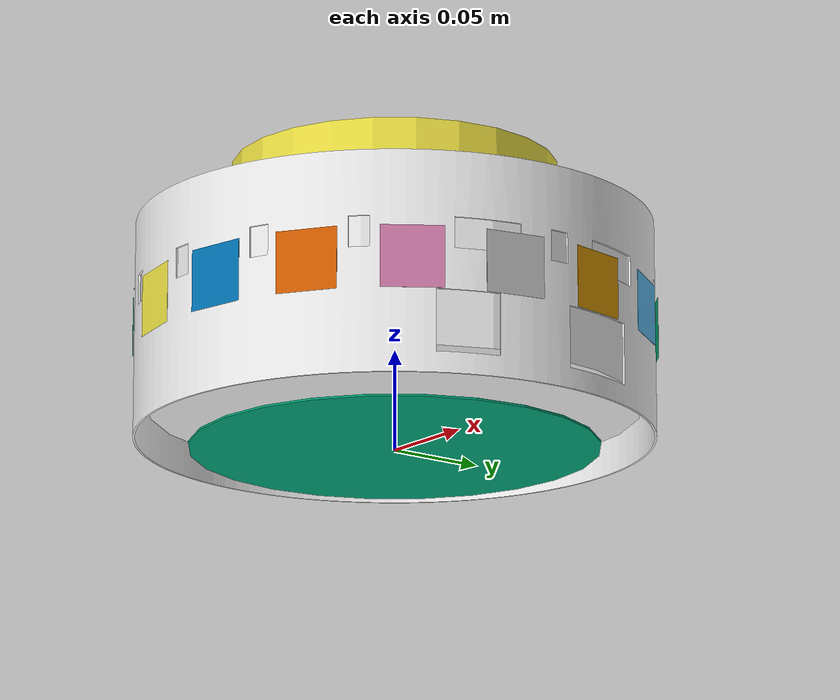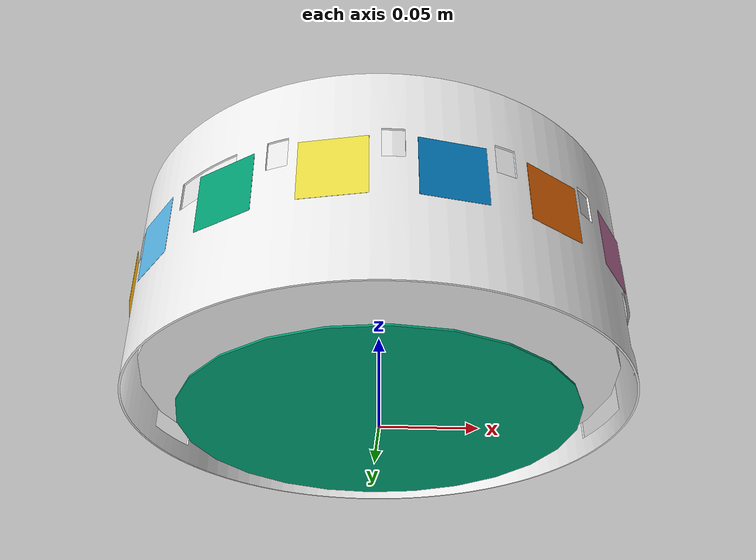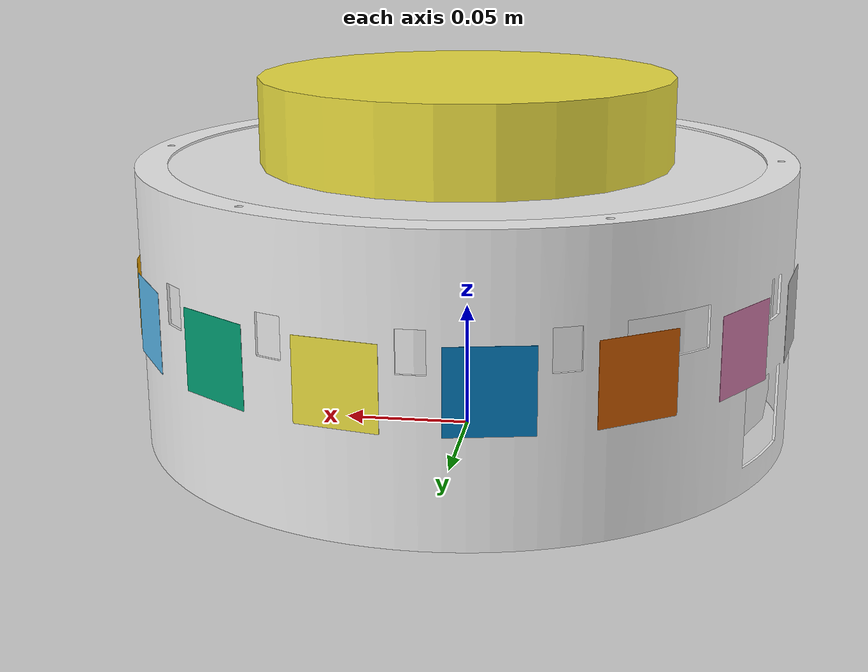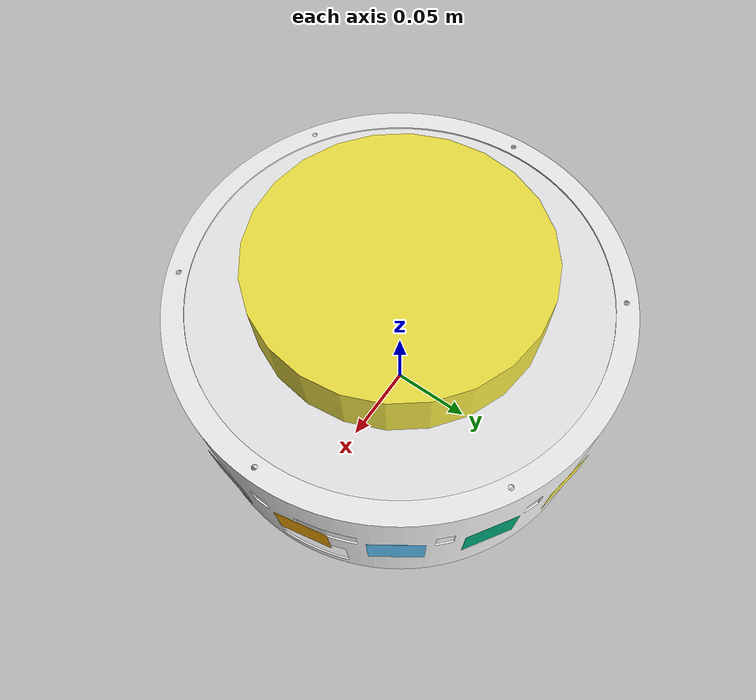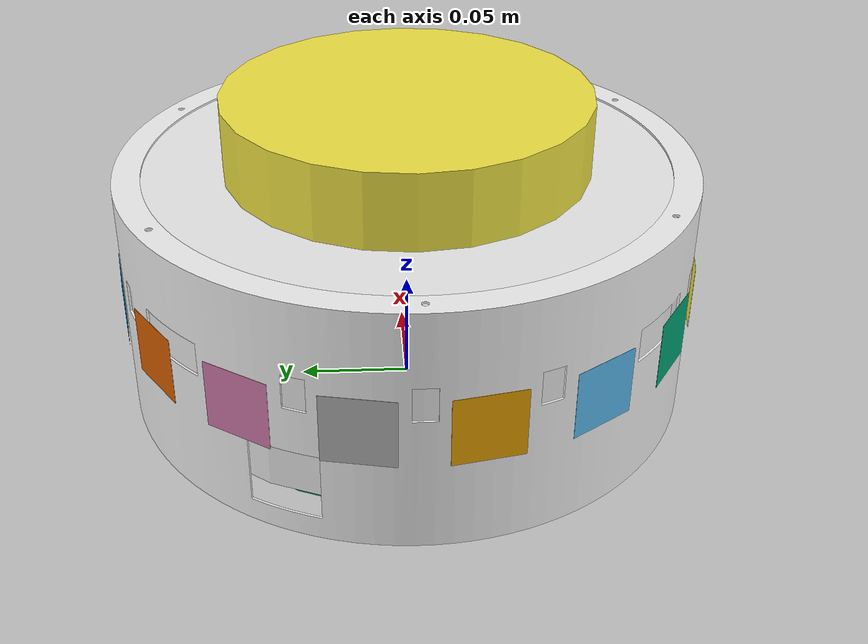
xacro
<?xml version="1.0"?>

<robot name="dots" xmlns:xacro="http://www.ros.org/wiki/xacro">

  <!-- Robot parameters -->

  <xacro:property name="lasersamples" value="16" />
  <xacro:property name="laser_min" value="0.13" />
  <xacro:property name="laser_max" value="2.0" />

  <xacro:property name="scale" value="0.001" />

  <xacro:property name="board_height" value="0.06" />
  <xacro:property name="ray_height" value="${board_height - 0.02}" />

  <xacro:property name="camera_dist" value="0.11" />
  <xacro:property name="camera_height" value="0.075" />
  <xacro:property name="cam0_angle" value="0.2967" />
  <xacro:property name="cam1_angle" value="2.251" />
  <xacro:property name="cam2_angle" value="-2.251" />
  <xacro:property name="cam3_angle" value="-0.2967" />

  <xacro:property name="led_radius" value="0.127" />
  <xacro:property name="led_width"  value="0.03" />
  <xacro:property name="led_height" value="0.03" />
  <xacro:property name="led_vpos"   value="0.06" />

  <xacro:property name="led0_angle" value="0.1963" />
  <xacro:property name="led1_angle" value="0.5890" />
  <xacro:property name="led2_angle" value="0.9817" />
  <xacro:property name="led3_angle" value="1.3744" />
  <xacro:property name="led4_angle" value="1.7671" />
  <xacro:property name="led5_angle" value="2.1598" />
  <xacro:property name="led6_angle" value="2.5525" />
  <xacro:property name="led7_angle" value="2.9452" />
  <xacro:property name="led8_angle" value="3.3338" />
  <xacro:property name="led9_angle" value="3.7306" />
  <xacro:property name="led10_angle" value="4.1233" />
  <xacro:property name="led11_angle" value="4.5160" />
  <xacro:property name="led12_angle" value="4.9087" />
  <xacro:property name="led13_angle" value="5.3014" />
  <xacro:property name="led14_angle" value="5.6941" />
  <xacro:property name="led15_angle" value="6.0868" />

  <!-- Body links -->
  <link name="base_link" />

  <link name="body">
    <inertial>
        <mass value="2.0" />
        <!-- These numbers are roughly right for a solid cylinder 100mm high, 125mm radius -->
        <inertia ixx="0.01" ixy="0.0" ixz="0.0" iyy="0.01" iyz="0.0" izz="0.015"/>
    </inertial>
    <collision>
      <origin xyz="0 0 0.06" rpy="0 0 0" />
      <geometry>
        <cylinder length="0.12" radius="0.125"/>
      </geometry>
      <surface>
        <friction>
          <ode>
            <mu>0.1</mu>
            <mu2>0.1</mu2>
          </ode>
        </friction>
      </surface>
    </collision>
    <visual>
      <origin xyz="0 0 0" rpy="0 0 0" />
      <geometry>
        <mesh filename="package://dots_sim/models/robot/shell.stl" scale="${scale} ${scale} ${scale}"/>
      </geometry>
      <material name="White">
        <color rgba="${240/255} ${240/255} ${240/255} 1.0"/>
      </material>
    </visual>
    <visual>
      <origin xyz="0 0 0.06" rpy="0 0 0" />
      <geometry>
        <cylinder length="0.09" radius="0.12"/>
      </geometry>
    </visual>
  </link>
  <joint name="body_joint" type="fixed">
    <parent link="base_link"/>
    <child link="body"/>
    <axis xyz="0 0 1"/>
    <origin xyz="0 0 0.005" rpy="0 0 0"/>
  </joint>

  <link name="slider">
    <inertial>
        <mass value="1.0" />
        <!-- These numbers are roughly right for a solid cylinder 100mm high, 125mm radius -->
        <inertia ixx="0.01" ixy="0.0" ixz="0.0" iyy="0.01" iyz="0.0" izz="0.015"/>
    </inertial>
    <collision>
      <origin xyz="0 0 0" rpy="0 0 0" />
      <geometry>
        <cylinder length="0.001" radius="0.125"/>
      </geometry>
      <surface>
        <friction>
          <ode>
            <mu>0.2</mu>
            <mu2>0.2</mu2>
          </ode>
        </friction>
      </surface>
    </collision>
    <visual>
      <origin xyz="0 0 0.001" rpy="0 0 0" />
      <geometry>
        <cylinder length="0.001" radius="0.1"/>
      </geometry>
    </visual>
  </link>
  <joint name="slider_joint" type="fixed">
    <parent link="base_link"/>
    <child link="slider"/>
    <axis xyz="0 0 1"/>
    <origin xyz="0 0 0" rpy="0 0 0"/>
  </joint>

  <link name="lifter">
    <inertial>
        <mass value="0.2" />
        <!-- These numbers are roughly right for a solid cylinder 100mm high, 125mm radius -->
        <inertia ixx="0.01" ixy="0.0" ixz="0.0" iyy="0.01" iyz="0.0" izz="0.015"/>
    </inertial>
    <collision>
      <origin xyz="0 0 0" rpy="0 0 0" />
      <geometry>
        <cylinder length="0.002" radius="0.08"/>
      </geometry>
      <surface>
        <friction>
          <ode>
            <mu>Inf</mu>
            <mu2>Inf</mu2>
          </ode>
        </friction>
        <contact>
          <ode>
          </ode>
        </contact>
      </surface>
    </collision>
    <collision>
      <origin xyz="0.08 0 0" rpy="0 0 0" />
      <geometry>
        <sphere radius="0.005"/>
      </geometry>
      <surface>
        <friction>
          <ode>
            <mu>Inf</mu>
            <mu2>Inf</mu2>
          </ode>
        </friction>
        <contact>
          <ode>
          </ode>
        </contact>
      </surface>
    </collision>
    <collision>
      <origin xyz="0.0 0.08 0" rpy="0 0 0" />
      <geometry>
        <sphere radius="0.005"/>
      </geometry>
      <surface>
        <friction>
          <ode>
            <mu>Inf</mu>
            <mu2>Inf</mu2>
          </ode>
        </friction>
        <contact>
          <ode>
          </ode>
        </contact>
      </surface>
    </collision>
    <collision>
      <origin xyz="-0.08 0.0 0" rpy="0 0 0" />
      <geometry>
        <sphere radius="0.005"/>
      </geometry>
      <surface>
        <friction>
          <ode>
            <mu>Inf</mu>
            <mu2>Inf</mu2>
          </ode>
        </friction>
        <contact>
          <ode>
          </ode>
        </contact>
      </surface>
    </collision>
    <collision>
      <origin xyz="0.0 -0.08 0" rpy="0 0 0" />
      <geometry>
        <sphere radius="0.005"/>
      </geometry>
      <surface>
        <friction>
          <ode>
            <mu>Inf</mu>
            <mu2>Inf</mu2>
          </ode>
        </friction>
        <contact>
          <ode>
          </ode>
        </contact>
      </surface>
    </collision>
    <visual>
      <origin xyz="0 0 -0.05" rpy="0 0 0" />
      <geometry>
        <cylinder length="0.10" radius="0.08"/>
      </geometry>
    </visual>
  </link>
  <joint name="lifter_joint" type="prismatic">
    <parent link="base_link"/>
    <child link="lifter"/>
    <axis xyz="0 0 1"/>
    <!-- height down 143mm up 197mm -->
    <origin xyz="0 0 0.143" rpy="0 0 0"/>
    <dynamics damping="1.0" friction="1.0"/>
    <limit lower="0.0" upper="0.054" effort="1000.0" velocity="5.0"/>
  </joint>

  <!-- Add sensor models -->
  <link name="irtof" />
  <joint name="irtof_joint" type="fixed">
    <parent link="base_link"/>
    <child link="irtof"/>
    <origin xyz="0 0 0.07" rpy="0 0 0"/>
  </joint>
  <gazebo reference="irtof">
    <sensor type="ray" name="ray_sensor">
      <pose>0 0 0 0 0 0</pose>
      <visualize>false</visualize>
      <update_rate>50</update_rate>
      <ray>
        <scan>
          <horizontal>
            <samples>${lasersamples}</samples>
            <resolution>1</resolution>
            <min_angle>0</min_angle>
            <max_angle>${2 * pi - pi / 8}</max_angle>
          </horizontal>
        </scan>
        <range>
          <min>${laser_min}</min>
          <max>${laser_max}</max>
          <resolution>0.001</resolution>
        </range>
      </ray>
      <noise>
        <type>gaussian</type>
        <mean>0.0</mean>
        <stddev>0.01</stddev>
      </noise>
      <plugin name="dots_sim_irtof" filename="libgazebo_ros_ray_sensor.so">
        <ros>
          <remapping>~/out:=sensor/scan</remapping>
        </ros>
        <frame_name>base_link</frame_name>
      </plugin>
    </sensor>
  </gazebo>

  <!-- Cameras -->
  <link name="cam0_link"/>
  <joint name="cam0_joint" type="fixed">
    <parent link="base_link"/>
    <child link="cam0_link"/>
    <origin xyz="${camera_dist*cos(cam0_angle)} ${camera_dist*sin(cam0_angle)} ${camera_height}" rpy="0 0 ${cam0_angle}"/>
  </joint>
  <link name="cam0_link_optical"/>
  <joint name="cam0_joint_optical" type="fixed">
    <origin xyz="0 0 0" rpy="${-pi/2} 0 ${-pi/2}"/>
    <parent link="cam0_link"/>
    <child link="cam0_link_optical"/>
  </joint>
  <gazebo reference="cam0_link">
    <sensor type="camera" name="cam0">
      <always_on>0</always_on>
      <update_rate>30</update_rate>
      <camera name="cam0">
        <horizontal_fov>2.094</horizontal_fov>
        <image>
          <width>640</width>
          <height>480</height>
          <format>R8G8B8</format>
        </image>
        <clip>
          <near>0.02</near>
          <far>300</far>
        </clip>
      </camera>
      <plugin name="cam0" filename="libgazebo_ros_camera.so">
        <ros>
          <remapping>cam0/image_raw:=cam0/image</remapping>
          <remapping>cam0/image_raw/compressed:=cam0/image/compressed</remapping>
        </ros>
        <frame_name>cam0_link_optical</frame_name>
      </plugin>
    </sensor>
  </gazebo>
  <link name="cam1_link"/>
  <joint name="cam1_joint" type="fixed">
    <parent link="base_link"/>
    <child link="cam1_link"/>
    <origin xyz="${camera_dist*cos(cam1_angle)} ${camera_dist*sin(cam1_angle)} ${camera_height}" rpy="0 0 ${cam1_angle}"/>
  </joint>
  <link name="cam1_link_optical"/>
  <joint name="cam1_joint_optical" type="fixed">
    <origin xyz="0 0 0" rpy="${-pi/2} 0 ${-pi/2}"/>
    <parent link="cam1_link"/>
    <child link="cam1_link_optical"/>
  </joint>
  <gazebo reference="cam1_link">
    <sensor type="camera" name="cam1">
      <always_on>0</always_on>
      <update_rate>30</update_rate>
      <camera name="cam1">
        <horizontal_fov>2.094</horizontal_fov>
        <image>
          <width>640</width>
          <height>480</height>
          <format>R8G8B8</format>
        </image>
        <clip>
          <near>0.02</near>
          <far>300</far>
        </clip>
      </camera>
      <plugin name="cam1" filename="libgazebo_ros_camera.so">
        <ros>
          <remapping>cam1/image_raw:=cam1/image</remapping>
          <remapping>cam1/image_raw/compressed:=cam1/image/compressed</remapping>
        </ros>
        <frame_name>cam1_link_optical</frame_name>
      </plugin>
    </sensor>
  </gazebo>
  <link name="cam2_link"/>
  <joint name="cam2_joint" type="fixed">
    <parent link="base_link"/>
    <child link="cam2_link"/>
    <origin xyz="${camera_dist*cos(cam2_angle)} ${camera_dist*sin(cam2_angle)} ${camera_height}" rpy="0 0 ${cam2_angle}"/>
  </joint>
  <link name="cam2_link_optical"/>
  <joint name="cam2_joint_optical" type="fixed">
    <origin xyz="0 0 0" rpy="${-pi/2} 0 ${-pi/2}"/>
    <parent link="cam2_link"/>
    <child link="cam2_link_optical"/>
  </joint>
  <gazebo reference="cam2_link">
    <sensor type="camera" name="cam2">
      <always_on>0</always_on>
      <update_rate>30</update_rate>
      <camera name="cam2">
        <horizontal_fov>2.094</horizontal_fov>
        <image>
          <width>640</width>
          <height>480</height>
          <format>R8G8B8</format>
        </image>
        <clip>
          <near>0.02</near>
          <far>300</far>
        </clip>
      </camera>
      <plugin name="cam2" filename="libgazebo_ros_camera.so">
        <ros>
          <remapping>cam2/image_raw:=cam2/image</remapping>
          <remapping>cam2/image_raw/compressed:=cam2/image/compressed</remapping>
        </ros>
        <frame_name>cam2_link_optical</frame_name>
      </plugin>
    </sensor>
  </gazebo>
  <link name="cam3_link"/>
  <joint name="cam3_joint" type="fixed">
    <parent link="base_link"/>
    <child link="cam3_link"/>
    <origin xyz="${camera_dist*cos(cam3_angle)} ${camera_dist*sin(cam3_angle)} ${camera_height}" rpy="0 0 ${cam3_angle}"/>
  </joint>
  <link name="cam3_link_optical"/>
  <joint name="cam3_joint_optical" type="fixed">
    <origin xyz="0 0 0" rpy="${-pi/2} 0 ${-pi/2}"/>
    <parent link="cam3_link"/>
    <child link="cam3_link_optical"/>
  </joint>
  <gazebo reference="cam3_link">
    <sensor type="camera" name="cam3">
      <always_on>0</always_on>
      <update_rate>30</update_rate>
      <camera name="cam3">
        <horizontal_fov>2.094</horizontal_fov>
        <image>
          <width>640</width>
          <height>480</height>
          <format>R8G8B8</format>
        </image>
        <clip>
          <near>0.02</near>
          <far>300</far>
        </clip>
      </camera>
      <plugin name="cam3" filename="libgazebo_ros_camera.so">
        <ros>
          <remapping>cam3/image_raw:=cam3/image</remapping>
          <remapping>cam3/image_raw/compressed:=cam3/image/compressed</remapping>
        </ros>
        <frame_name>cam3_link_optical</frame_name>
      </plugin>
    </sensor>
  </gazebo>

  <link name="cam4_link"/>
  <joint name="cam4_joint" type="fixed">
    <parent link="lifter"/>
    <child link="cam4_link"/>
    <origin xyz="0 0 0" rpy="0 -1.570796 0"/>
  </joint>
  <link name="cam4_link_optical"/>
  <joint name="cam4_joint_optical" type="fixed">
    <origin xyz="0 0 0" rpy="${-pi/2} 0 ${-pi/2}"/>
    <parent link="cam4_link"/>
    <child link="cam4_link_optical"/>
  </joint>
  <gazebo reference="cam4_link">
    <sensor type="camera" name="cam4">
      <always_on>0</always_on>
      <update_rate>30</update_rate>
      <camera name="cam4">
        <horizontal_fov>2.094</horizontal_fov>
        <image>
          <width>640</width>
          <height>480</height>
          <format>R8G8B8</format>
        </image>
        <clip>
          <near>0.02</near>
          <far>300</far>
        </clip>
      </camera>
      <plugin name="cam4" filename="libgazebo_ros_camera.so">
        <ros>
          <remapping>cam4/image_raw:=cam4/image</remapping>
          <remapping>cam4/image_raw/compressed:=cam4/image/compressed</remapping>
        </ros>
        <frame_name>cam4_link_optical</frame_name>
      </plugin>
    </sensor>
  </gazebo>

  <link name="imu_link"/>
  <joint name="imu_joint" type="fixed">
    <parent link="base_link"/>
    <child link="imu_link"/>
    <origin xyz="0 0 0" rpy="0 0 0"/>
  </joint>
  <gazebo reference="imu_link">
    <sensor name="imu" type="imu">
      <always_on>true</always_on>
      <update_rate>200</update_rate>
      <imu>
        <angular_velocity>
          <x><noise type="gaussian"><mean>0.0</mean><stddev>5e-3</stddev></noise></x>
          <y><noise type="gaussian"><mean>0.0</mean><stddev>5e-3</stddev></noise></y>
          <z><noise type="gaussian"><mean>0.0</mean><stddev>5e-3</stddev></noise></z>
        </angular_velocity>
        <linear_acceleration>
          <x><noise type="gaussian"><mean>0.0</mean><stddev>5e-2</stddev></noise></x>
          <y><noise type="gaussian"><mean>0.0</mean><stddev>5e-2</stddev></noise></y>
          <z><noise type="gaussian"><mean>0.0</mean><stddev>5e-2</stddev></noise></z>
        </linear_acceleration>
      </imu>
      <plugin name="imu_plugin" filename="libgazebo_ros_imu_sensor.so">
        <ros>
          <remapping>~/out:=sensor/imu</remapping>
        </ros>
      </plugin>
    </sensor>
  </gazebo>

  <gazebo reference="base_link">
    <material>Gazebo/DarkGrey</material>
  </gazebo>

  <gazebo reference="body">
    <material>Gazebo/White</material>
  </gazebo>

  <!--                GAZEBO RELATED PART                             -->

  <!-- ROS Control plugin for Gazebo -->
  <gazebo>
    <plugin name="dots_sim_force_based_drive" filename="libgazebo_ros_force_based_move.so">
      <ros>
        <remapping>/tf:=tf</remapping>
        <remapping>/tf_static:=tf_static</remapping>
      </ros>

      <!-- output -->
      <publish_odom>true</publish_odom>
      <publish_odom_tf>true</publish_odom_tf>

      <odometry_topic>odom</odometry_topic>
      <odometry_frame>odom</odometry_frame>
      <robot_base_frame>base_link</robot_base_frame>
      <vel_p_gain>500.0</vel_p_gain>
      <vel_i_gain>10000.0</vel_i_gain>
      <vel_i_lim>0.1</vel_i_lim>
      <force_lim>200.0</force_lim>
      <omega_p_gain>5.0</omega_p_gain>
      <omega_i_gain>100.0</omega_i_gain>
      <omega_i_lim>0.01</omega_i_lim>
      <torque_lim>10.0</torque_lim>
    </plugin>

    <!-- Ground truth -->
    <plugin name="gazebo_ros_p3d" filename="libgazebo_ros_p3d.so">
      <ros>
        <remapping>odom:=ground_truth</remapping>
      </ros>
      <body_name>base_link</body_name>
      <frame_name>odom</frame_name>
      <update_rate>50</update_rate>
      <xyz_offsets>0.0 0.0 0.0</xyz_offsets>
      <rpy_offsets>0.0 0.0 0.0</rpy_offsets>
      <gaussian_noise>0.01</gaussian_noise>
    </plugin>

    <plugin name="gazebo_ros_joint_state_publisher" filename="libgazebo_ros_joint_state_publisher.so">
      <ros>
        <remapping>/tf:=tf</remapping>
        <remapping>/tf_static:=tf_static</remapping>
      </ros>
      <joint_name>lifter_joint</joint_name>
      <update_rate>100.0</update_rate>
    </plugin>

    <plugin name="gazebo_ros_lifter" filename="libgazebo_ros_lifter.so">
      <topic>lifter_pos</topic>
      <joint_name>lifter_joint</joint_name>
      <joint_position>0.0</joint_position>
      <joint_pid>2000.0 1000.0 100.0</joint_pid>
      <integrator_limit>0.1</integrator_limit>
      <force_offset>2.0</force_offset>
      <update_rate>100.0</update_rate>
    </plugin>

  </gazebo>

<link name="led0">
<visual>
  <origin xyz="${led_radius*cos(led0_angle)} ${led_radius*sin(led0_angle)} ${led_vpos}" rpy="0 1.5708 ${led0_angle}" />
  <geometry>
    <box size="${led_width} ${led_height} 0.00011"/>
  </geometry>
</visual>
</link>
<joint name="led0_joint" type="fixed">
  <parent link="base_link"/><child link="led0"/>
  <axis xyz="0 0 0"/><origin xyz="0 0 0" rpy="0 0 0"/>
</joint>
<gazebo reference="led0">
  <material>transparent</material>
  <visual>
    <plugin name="colour_controller0" filename="libgazebo_ros_colour.so">
    <ros><remapping>colour:=led0</remapping></ros>
    </plugin>
  </visual>
</gazebo>
<link name="led1">
<visual>
  <origin xyz="${led_radius*cos(led1_angle)} ${led_radius*sin(led1_angle)} ${led_vpos}" rpy="0 1.5708 ${led1_angle}" />
  <geometry>
    <box size="${led_width} ${led_height} 0.00011"/>
  </geometry>
</visual>
</link>
<joint name="led1_joint" type="fixed">
  <parent link="base_link"/><child link="led1"/>
  <axis xyz="0 0 0"/><origin xyz="0 0 0" rpy="0 0 0"/>
</joint>
<gazebo reference="led1">
  <material>transparent</material>
  <visual>
    <plugin name="colour_controller1" filename="libgazebo_ros_colour.so">
    <ros><remapping>colour:=led1</remapping></ros>
    </plugin>
  </visual>
</gazebo>
<link name="led2">
<visual>
  <origin xyz="${led_radius*cos(led2_angle)} ${led_radius*sin(led2_angle)} ${led_vpos}" rpy="0 1.5708 ${led2_angle}" />
  <geometry>
    <box size="${led_width} ${led_height} 0.00011"/>
  </geometry>
</visual>
</link>
<joint name="led2_joint" type="fixed">
  <parent link="base_link"/><child link="led2"/>
  <axis xyz="0 0 0"/><origin xyz="0 0 0" rpy="0 0 0"/>
</joint>
<gazebo reference="led2">
  <material>transparent</material>
  <visual>
    <plugin name="colour_controller2" filename="libgazebo_ros_colour.so">
    <ros><remapping>colour:=led2</remapping></ros>
    </plugin>
  </visual>
</gazebo>
<link name="led3">
<visual>
  <origin xyz="${led_radius*cos(led3_angle)} ${led_radius*sin(led3_angle)} ${led_vpos}" rpy="0 1.5708 ${led3_angle}" />
  <geometry>
    <box size="${led_width} ${led_height} 0.00011"/>
  </geometry>
</visual>
</link>
<joint name="led3_joint" type="fixed">
  <parent link="base_link"/><child link="led3"/>
  <axis xyz="0 0 0"/><origin xyz="0 0 0" rpy="0 0 0"/>
</joint>
<gazebo reference="led3">
  <material>transparent</material>
  <visual>
    <plugin name="colour_controller3" filename="libgazebo_ros_colour.so">
    <ros><remapping>colour:=led3</remapping></ros>
    </plugin>
  </visual>
</gazebo>
<link name="led4">
<visual>
  <origin xyz="${led_radius*cos(led4_angle)} ${led_radius*sin(led4_angle)} ${led_vpos}" rpy="0 1.5708 ${led4_angle}" />
  <geometry>
    <box size="${led_width} ${led_height} 0.00011"/>
  </geometry>
</visual>
</link>
<joint name="led4_joint" type="fixed">
  <parent link="base_link"/><child link="led4"/>
  <axis xyz="0 0 0"/><origin xyz="0 0 0" rpy="0 0 0"/>
</joint>
<gazebo reference="led4">
  <material>transparent</material>
  <visual>
    <plugin name="colour_controller4" filename="libgazebo_ros_colour.so">
    <ros><remapping>colour:=led4</remapping></ros>
    </plugin>
  </visual>
</gazebo>
<link name="led5">
<visual>
  <origin xyz="${led_radius*cos(led5_angle)} ${led_radius*sin(led5_angle)} ${led_vpos}" rpy="0 1.5708 ${led5_angle}" />
  <geometry>
    <box size="${led_width} ${led_height} 0.00011"/>
  </geometry>
</visual>
</link>
<joint name="led5_joint" type="fixed">
  <parent link="base_link"/><child link="led5"/>
  <axis xyz="0 0 0"/><origin xyz="0 0 0" rpy="0 0 0"/>
</joint>
<gazebo reference="led5">
  <material>transparent</material>
  <visual>
    <plugin name="colour_controller5" filename="libgazebo_ros_colour.so">
    <ros><remapping>colour:=led5</remapping></ros>
    </plugin>
  </visual>
</gazebo>
<link name="led6">
<visual>
  <origin xyz="${led_radius*cos(led6_angle)} ${led_radius*sin(led6_angle)} ${led_vpos}" rpy="0 1.5708 ${led6_angle}" />
  <geometry>
    <box size="${led_width} ${led_height} 0.00011"/>
  </geometry>
</visual>
</link>
<joint name="led6_joint" type="fixed">
  <parent link="base_link"/><child link="led6"/>
  <axis xyz="0 0 0"/><origin xyz="0 0 0" rpy="0 0 0"/>
</joint>
<gazebo reference="led6">
  <material>transparent</material>
  <visual>
    <plugin name="colour_controller6" filename="libgazebo_ros_colour.so">
    <ros><remapping>colour:=led6</remapping></ros>
    </plugin>
  </visual>
</gazebo>
<link name="led7">
<visual>
  <origin xyz="${led_radius*cos(led7_angle)} ${led_radius*sin(led7_angle)} ${led_vpos}" rpy="0 1.5708 ${led7_angle}" />
  <geometry>
    <box size="${led_width} ${led_height} 0.00011"/>
  </geometry>
</visual>
</link>
<joint name="led7_joint" type="fixed">
  <parent link="base_link"/><child link="led7"/>
  <axis xyz="0 0 0"/><origin xyz="0 0 0" rpy="0 0 0"/>
</joint>
<gazebo reference="led7">
  <material>transparent</material>
  <visual>
    <plugin name="colour_controller7" filename="libgazebo_ros_colour.so">
    <ros><remapping>colour:=led7</remapping></ros>
    </plugin>
  </visual>
</gazebo>
<link name="led8">
<visual>
  <origin xyz="${led_radius*cos(led8_angle)} ${led_radius*sin(led8_angle)} ${led_vpos}" rpy="0 1.5708 ${led8_angle}" />
  <geometry>
    <box size="${led_width} ${led_height} 0.00011"/>
  </geometry>
</visual>
</link>
<joint name="led8_joint" type="fixed">
  <parent link="base_link"/><child link="led8"/>
  <axis xyz="0 0 0"/><origin xyz="0 0 0" rpy="0 0 0"/>
</joint>
<gazebo reference="led8">
  <material>transparent</material>
  <visual>
    <plugin name="colour_controller8" filename="libgazebo_ros_colour.so">
    <ros><remapping>colour:=led8</remapping></ros>
    </plugin>
  </visual>
</gazebo>
<link name="led9">
<visual>
  <origin xyz="${led_radius*cos(led9_angle)} ${led_radius*sin(led9_angle)} ${led_vpos}" rpy="0 1.5708 ${led9_angle}" />
  <geometry>
    <box size="${led_width} ${led_height} 0.00011"/>
  </geometry>
</visual>
</link>
<joint name="led9_joint" type="fixed">
  <parent link="base_link"/><child link="led9"/>
  <axis xyz="0 0 0"/><origin xyz="0 0 0" rpy="0 0 0"/>
</joint>
<gazebo reference="led9">
  <material>transparent</material>
  <visual>
    <plugin name="colour_controller9" filename="libgazebo_ros_colour.so">
    <ros><remapping>colour:=led9</remapping></ros>
    </plugin>
  </visual>
</gazebo>
<link name="led10">
<visual>
  <origin xyz="${led_radius*cos(led10_angle)} ${led_radius*sin(led10_angle)} ${led_vpos}" rpy="0 1.5708 ${led10_angle}" />
  <geometry>
    <box size="${led_width} ${led_height} 0.00011"/>
  </geometry>
</visual>
</link>
<joint name="led10_joint" type="fixed">
  <parent link="base_link"/><child link="led10"/>
  <axis xyz="0 0 0"/><origin xyz="0 0 0" rpy="0 0 0"/>
</joint>
<gazebo reference="led10">
  <material>transparent</material>
  <visual>
    <plugin name="colour_controller10" filename="libgazebo_ros_colour.so">
    <ros><remapping>colour:=led10</remapping></ros>
    </plugin>
  </visual>
</gazebo>
<link name="led11">
<visual>
  <origin xyz="${led_radius*cos(led11_angle)} ${led_radius*sin(led11_angle)} ${led_vpos}" rpy="0 1.5708 ${led11_angle}" />
  <geometry>
    <box size="${led_width} ${led_height} 0.00011"/>
  </geometry>
</visual>
</link>
<joint name="led11_joint" type="fixed">
  <parent link="base_link"/><child link="led11"/>
  <axis xyz="0 0 0"/><origin xyz="0 0 0" rpy="0 0 0"/>
</joint>
<gazebo reference="led11">
  <material>transparent</material>
  <visual>
    <plugin name="colour_controller11" filename="libgazebo_ros_colour.so">
    <ros><remapping>colour:=led11</remapping></ros>
    </plugin>
  </visual>
</gazebo>
<link name="led12">
<visual>
  <origin xyz="${led_radius*cos(led12_angle)} ${led_radius*sin(led12_angle)} ${led_vpos}" rpy="0 1.5708 ${led12_angle}" />
  <geometry>
    <box size="${led_width} ${led_height} 0.00011"/>
  </geometry>
</visual>
</link>
<joint name="led12_joint" type="fixed">
  <parent link="base_link"/><child link="led12"/>
  <axis xyz="0 0 0"/><origin xyz="0 0 0" rpy="0 0 0"/>
</joint>
<gazebo reference="led12">
  <material>transparent</material>
  <visual>
    <plugin name="colour_controller12" filename="libgazebo_ros_colour.so">
    <ros><remapping>colour:=led12</remapping></ros>
    </plugin>
  </visual>
</gazebo>
<link name="led13">
<visual>
  <origin xyz="${led_radius*cos(led13_angle)} ${led_radius*sin(led13_angle)} ${led_vpos}" rpy="0 1.5708 ${led13_angle}" />
  <geometry>
    <box size="${led_width} ${led_height} 0.00011"/>
  </geometry>
</visual>
</link>
<joint name="led13_joint" type="fixed">
  <parent link="base_link"/><child link="led13"/>
  <axis xyz="0 0 0"/><origin xyz="0 0 0" rpy="0 0 0"/>
</joint>
<gazebo reference="led13">
  <material>transparent</material>
  <visual>
    <plugin name="colour_controller13" filename="libgazebo_ros_colour.so">
    <ros><remapping>colour:=led13</remapping></ros>
    </plugin>
  </visual>
</gazebo>
<link name="led14">
<visual>
  <origin xyz="${led_radius*cos(led14_angle)} ${led_radius*sin(led14_angle)} ${led_vpos}" rpy="0 1.5708 ${led14_angle}" />
  <geometry>
    <box size="${led_width} ${led_height} 0.00011"/>
  </geometry>
</visual>
</link>
<joint name="led14_joint" type="fixed">
  <parent link="base_link"/><child link="led14"/>
  <axis xyz="0 0 0"/><origin xyz="0 0 0" rpy="0 0 0"/>
</joint>
<gazebo reference="led14">
  <material>transparent</material>
  <visual>
    <plugin name="colour_controller14" filename="libgazebo_ros_colour.so">
    <ros><remapping>colour:=led14</remapping></ros>
    </plugin>
  </visual>
</gazebo>
<link name="led15">
<visual>
  <origin xyz="${led_radius*cos(led15_angle)} ${led_radius*sin(led15_angle)} ${led_vpos}" rpy="0 1.5708 ${led15_angle}" />
  <geometry>
    <box size="${led_width} ${led_height} 0.00011"/>
  </geometry>
</visual>
</link>
<joint name="led15_joint" type="fixed">
  <parent link="base_link"/><child link="led15"/>
  <axis xyz="0 0 0"/><origin xyz="0 0 0" rpy="0 0 0"/>
</joint>
<gazebo reference="led15">
  <material>transparent</material>
  <visual>
    <plugin name="colour_controller15" filename="libgazebo_ros_colour.so">
    <ros><remapping>colour:=led15</remapping></ros>
    </plugin>
  </visual>
</gazebo>

</robot>
